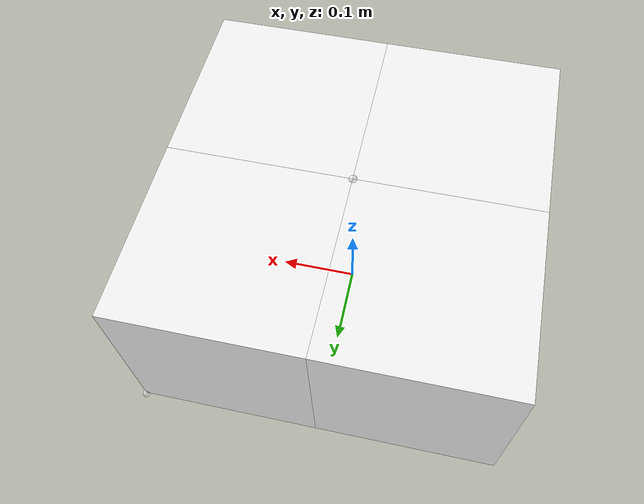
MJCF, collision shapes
<mujoco model="cardbox_c1">
  <default>
    <default class="visual">
      <geom group="1" type="mesh" contype="0" conaffinity="0" density="100"/>
    </default>
    <default class="collision">
      <geom group="0" type="mesh" density="100" solimp="0.95 0.98 0.001" solref="0.004 1" rgba="1 1 1 0.25"/>
    </default>
  </default>
  <asset>
    <texture type="2d" name="T_Cardbox_C2_Albedo" file="textures/T_Cardbox_C2_Albedo.png"/>
    <material name="Cardboard_C1.001" texture="T_Cardbox_C2_Albedo" specular="0.5" shininess="0.25"/>
    <mesh file="meshes/cardbox_c1.obj" name="cardbox_c1"/>
  </asset>
  <worldbody>
    <body>
      <body name="object">
        <geom material="Cardboard_C1.001" mesh="cardbox_c1" class="visual"/>
        <geom type="box" pos="0.11438979458586568 0.1132395756748832 0.11619486769882828" size="0.11532320848879028 0.11362960291817131 0.1138694271417666" quat="0.5001047556437312 0.5001791179205314 -0.5006005553534867 0.49911438304114525" class="collision"/>
        <geom type="box" pos="0.11406816967872227 -0.11449877434064977 0.11583956501369462" size="0.11532320848879028 0.11362960291817131 0.1138694271417666" quat="0.5001047556437312 0.5001791179205314 -0.5006005553534867 0.49911438304114525" class="collision"/>
        <geom type="box" pos="-0.11286914798264039 0.11356032142651372 0.11632441372313261" size="0.11532320848879028 0.11362960291817131 0.1138694271417666" quat="0.5001047556437312 0.5001791179205314 -0.5006005553534867 0.49911438304114525" class="collision"/>
        <geom type="box" pos="-0.1131907728897838 -0.11417802858901925 0.11596911103799895" size="0.11532320848879028 0.11362960291817131 0.1138694271417666" quat="0.5001047556437312 0.5001791179205314 -0.5006005553534867 0.49911438304114525" class="collision"/>
      </body>
      <site name="bottom_site" pos="0 0 0.00098" rgba="1 1 1 0.5" size="0.005"/>
      <site name="top_site" pos="0 0 0.231274" rgba="1 1 1 0.5" size="0.005"/>
      <site name="horizontal_radius_site" pos="0.227483 0.227764 0" rgba="1 1 1 0.5" size="0.005"/>
    </body>
  </worldbody>
</mujoco>
